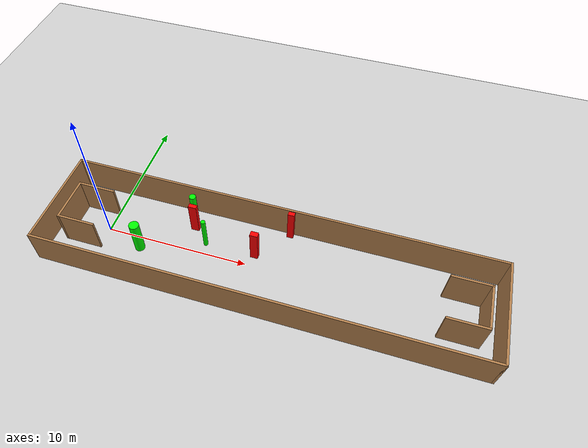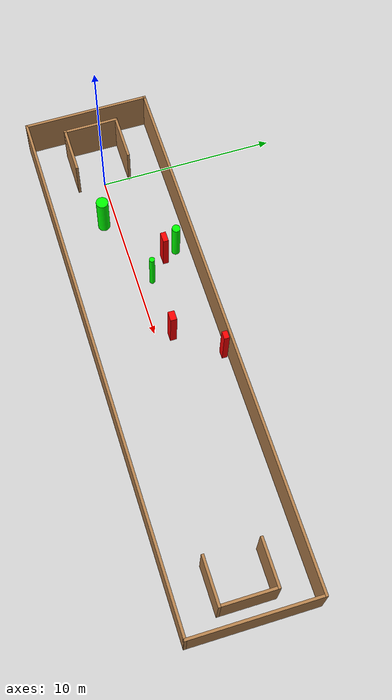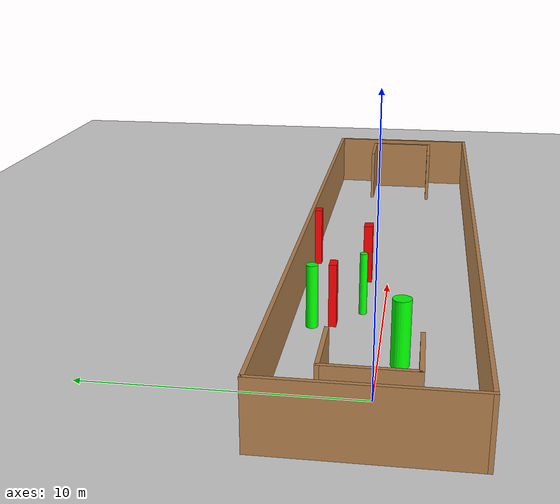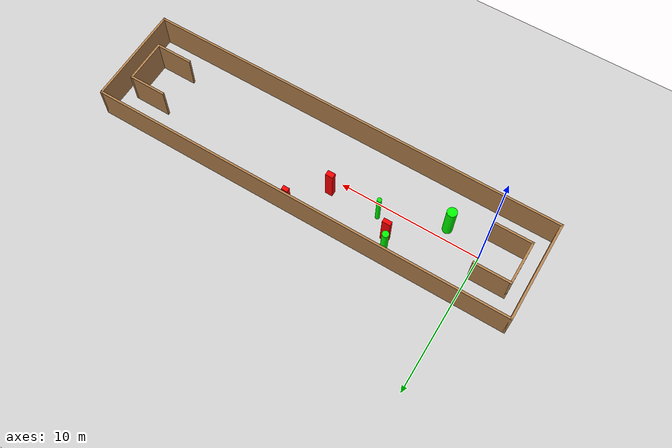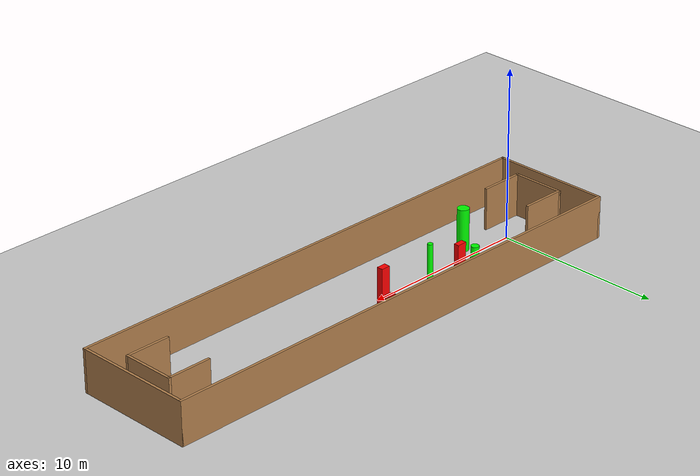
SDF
<sdf version="1.7">
 <world name="default">
  <light name="sun" type="directional">
   <pose>0 0 10 0 -0 0</pose>
   <diffuse>0.8 0.8 0.8 1</diffuse>
   <specular>0.2 0.2 0.2 1</specular>
   <attenuation>
    <range>1000</range>
    <constant>0.9</constant>
    <linear>0.01</linear>
    <quadratic>0.001</quadratic>
   </attenuation>
   <direction>-0.5 0.1 -0.9</direction>
   <spot><inner_angle>0</inner_angle><outer_angle>0</outer_angle><falloff>0</falloff></spot>
  </light>
  <model name="ground_plane">
   <static>1</static>
   <link name="link">
    <collision name="collision">
     <geometry><plane><normal>0 0 1</normal><size>100 100</size></plane></geometry>
     <surface>
      <contact><collide_bitmask>65535</collide_bitmask></contact>
      <friction><ode><mu>100</mu><mu2>50</mu2></ode></friction>
     </surface>
    </collision>
    <visual name="visual">
     <cast_shadows>0</cast_shadows>
     <geometry><plane><normal>0 0 1</normal><size>100 100</size></plane></geometry>
     <material>
      <script><uri>file://media/materials/scripts/gazebo.material</uri><name>Gazebo/Grey</name></script>
     </material>
    </visual>
   </link>
  </model>
  <gravity>0 0 -9.8</gravity>
  <magnetic_field>6e-06 2.3e-05 -4.2e-05</magnetic_field>
  <atmosphere type="adiabatic"/>
  <physics type="ode">
   <max_step_size>0.001</max_step_size>
   <real_time_factor>1</real_time_factor>
   <real_time_update_rate>1000</real_time_update_rate>
  </physics>
  <scene><ambient>0.4 0.4 0.4 1</ambient><background>0.7 0.7 0.7 1</background><shadows>1</shadows></scene>
  <spherical_coordinates>
   <surface_model>EARTH_WGS84</surface_model>
   <latitude_deg>0</latitude_deg>
   <longitude_deg>0</longitude_deg>
   <elevation>0</elevation>
   <heading_deg>0</heading_deg>
  </spherical_coordinates>
  <model name="my_base_walls">
   <link name="Wall_0">
    <collision name="Wall_0_Collision">
     <geometry><box><size>7.15 0.15 2.5</size></box></geometry>
     <pose>0 0 1.25 0 -0 0</pose>
    </collision>
    <visual name="Wall_0_Visual">
     <pose>0 0 1.25 0 -0 0</pose>
     <geometry><box><size>7.15 0.15 2.5</size></box></geometry>
     <material>
      <script><uri>file://media/materials/scripts/gazebo.material</uri><name>Gazebo/Wood</name></script>
      <ambient>1 1 1 1</ambient>
     </material>
     <meta><layer>0</layer></meta>
    </visual>
    <pose>-15 0 0 0 -0 1.5708</pose>
   </link>
   <link name="Wall_10">
    <collision name="Wall_10_Collision">
     <geometry><box><size>2.65 0.15 2.5</size></box></geometry>
     <pose>0 0 1.25 0 -0 0</pose>
    </collision>
    <visual name="Wall_10_Visual">
     <pose>0 0 1.25 0 -0 0</pose>
     <geometry><box><size>2.65 0.15 2.5</size></box></geometry>
     <material>
      <script><uri>file://media/materials/scripts/gazebo.material</uri><name>Gazebo/Wood</name></script>
      <ambient>1 1 1 1</ambient>
     </material>
     <meta><layer>0</layer></meta>
    </visual>
    <pose>-12.75 -1.5 0 0 -0 0</pose>
   </link>
   <link name="Wall_12">
    <collision name="Wall_12_Collision">
     <geometry><box><size>2.65 0.15 2.5</size></box></geometry>
     <pose>0 0 1.25 0 -0 0</pose>
    </collision>
    <visual name="Wall_12_Visual">
     <pose>0 0 1.25 0 -0 0</pose>
     <geometry><box><size>2.65 0.15 2.5</size></box></geometry>
     <material>
      <script><uri>file://media/materials/scripts/gazebo.material</uri><name>Gazebo/Wood</name></script>
      <ambient>1 1 1 1</ambient>
     </material>
     <meta><layer>0</layer></meta>
    </visual>
    <pose>-12.75 1.5 0 0 -0 0</pose>
   </link>
   <link name="Wall_14">
    <collision name="Wall_14_Collision">
     <geometry><box><size>3.15 0.15 2.5</size></box></geometry>
     <pose>0 0 1.25 0 -0 0</pose>
    </collision>
    <visual name="Wall_14_Visual">
     <pose>0 0 1.25 0 -0 0</pose>
     <geometry><box><size>3.15 0.15 2.5</size></box></geometry>
     <material>
      <script><uri>file://media/materials/scripts/gazebo.material</uri><name>Gazebo/Wood</name></script>
      <ambient>1 1 1 1</ambient>
     </material>
     <meta><layer>0</layer></meta>
    </visual>
    <pose>14 0 0 0 -0 -1.5708</pose>
   </link>
   <link name="Wall_15">
    <collision name="Wall_15_Collision">
     <geometry><box><size>2.65 0.15 2.5</size></box></geometry>
     <pose>0 0 1.25 0 -0 0</pose>
    </collision>
    <visual name="Wall_15_Visual">
     <pose>0 0 1.25 0 -0 0</pose>
     <geometry><box><size>2.65 0.15 2.5</size></box></geometry>
     <material>
      <script><uri>file://media/materials/scripts/gazebo.material</uri><name>Gazebo/Wood</name></script>
      <ambient>1 1 1 1</ambient>
     </material>
     <meta><layer>0</layer></meta>
    </visual>
    <pose>12.75 -1.5 0 0 -0 3.14159</pose>
   </link>
   <link name="Wall_17">
    <collision name="Wall_17_Collision">
     <geometry><box><size>2.65 0.15 2.5</size></box></geometry>
     <pose>0 0 1.25 0 -0 0</pose>
    </collision>
    <visual name="Wall_17_Visual">
     <pose>0 0 1.25 0 -0 0</pose>
     <geometry><box><size>2.65 0.15 2.5</size></box></geometry>
     <material>
      <script><uri>file://media/materials/scripts/gazebo.material</uri><name>Gazebo/Wood</name></script>
      <ambient>1 1 1 1</ambient>
     </material>
     <meta><layer>0</layer></meta>
    </visual>
    <pose>12.75 1.5 0 0 -0 3.14159</pose>
   </link>
   <link name="Wall_2">
    <collision name="Wall_2_Collision">
     <geometry><box><size>30.15 0.15 2.5</size></box></geometry>
     <pose>0 0 1.25 0 -0 0</pose>
    </collision>
    <visual name="Wall_2_Visual">
     <pose>0 0 1.25 0 -0 0</pose>
     <geometry><box><size>30.15 0.15 2.5</size></box></geometry>
     <material>
      <script><uri>file://media/materials/scripts/gazebo.material</uri><name>Gazebo/Wood</name></script>
      <ambient>1 1 1 1</ambient>
     </material>
     <meta><layer>0</layer></meta>
    </visual>
    <pose>-0 -3.5 0 0 -0 0</pose>
   </link>
   <link name="Wall_4">
    <collision name="Wall_4_Collision">
     <geometry><box><size>30.15 0.15 2.5</size></box></geometry>
     <pose>0 0 1.25 0 -0 0</pose>
    </collision>
    <visual name="Wall_4_Visual">
     <pose>0 0 1.25 0 -0 0</pose>
     <geometry><box><size>30.15 0.15 2.5</size></box></geometry>
     <material>
      <script><uri>file://media/materials/scripts/gazebo.material</uri><name>Gazebo/Wood</name></script>
      <ambient>1 1 1 1</ambient>
     </material>
     <meta><layer>0</layer></meta>
    </visual>
    <pose>-0 3.5 0 0 -0 0</pose>
   </link>
   <link name="Wall_6">
    <collision name="Wall_6_Collision">
     <geometry><box><size>7.15 0.15 2.5</size></box></geometry>
     <pose>0 0 1.25 0 -0 0</pose>
    </collision>
    <visual name="Wall_6_Visual">
     <pose>0 0 1.25 0 -0 0</pose>
     <geometry><box><size>7.15 0.15 2.5</size></box></geometry>
     <material>
      <script><uri>file://media/materials/scripts/gazebo.material</uri><name>Gazebo/Wood</name></script>
      <ambient>1 1 1 1</ambient>
     </material>
     <meta><layer>0</layer></meta>
    </visual>
    <pose>15 0 0 0 -0 -1.5708</pose>
   </link>
   <link name="Wall_9">
    <collision name="Wall_9_Collision">
     <geometry><box><size>3.15 0.15 2.5</size></box></geometry>
     <pose>0 0 1.25 0 -0 0</pose>
    </collision>
    <visual name="Wall_9_Visual">
     <pose>0 0 1.25 0 -0 0</pose>
     <geometry><box><size>3.15 0.15 2.5</size></box></geometry>
     <material>
      <script><uri>file://media/materials/scripts/gazebo.material</uri><name>Gazebo/Wood</name></script>
      <ambient>1 1 1 1</ambient>
     </material>
     <meta><layer>0</layer></meta>
    </visual>
    <pose>-14 0 0 0 -0 -1.5708</pose>
   </link>
   <static>1</static>
   <pose>11.5 0 0 0 -0 0</pose>
  </model>
  <model name="cylinder1">
   <static>1</static>
   <link name="link">
    <inertial>
     <mass>1</mass>
     <inertia><ixx>0.5</ixx><ixy>0</ixy><ixz>0</ixz><iyy>0.5</iyy><iyz>0</iyz><izz>1</izz></inertia>
    </inertial>
    <collision name="collision">
     <geometry><cylinder><radius>0.33954353417196526</radius><length>2.5</length></cylinder></geometry>
    </collision>
    <visual name="visual">
     <geometry><cylinder><radius>0.33954353417196526</radius><length>2.5</length></cylinder></geometry>
     <material>
      <ambient>0 1 0 1</ambient>
      <diffuse>0 1 0 1</diffuse>
      <specular>0.1 0.1 0.1 1</specular>
      <emissive>0 0 0 0</emissive>
     </material>
    </visual>
   </link>
   <pose>2.6477601715738484 -0.7738969554507218 1.25 0 0 0</pose>
  </model>
  <model name="cylinder2">
   <static>1</static>
   <link name="link">
    <inertial>
     <mass>1</mass>
     <inertia><ixx>0.5</ixx><ixy>0</ixy><ixz>0</ixz><iyy>0.5</iyy><iyz>0</iyz><izz>1</izz></inertia>
    </inertial>
    <collision name="collision">
     <geometry><cylinder><radius>0.2312841802814616</radius><length>2.5</length></cylinder></geometry>
    </collision>
    <visual name="visual">
     <geometry><cylinder><radius>0.2312841802814616</radius><length>2.5</length></cylinder></geometry>
     <material>
      <ambient>0 1 0 1</ambient>
      <diffuse>0 1 0 1</diffuse>
      <specular>0.1 0.1 0.1 1</specular>
      <emissive>0 0 0 0</emissive>
     </material>
    </visual>
   </link>
   <pose>5.4226835418459824 2.6483397866682328 1.25 0 0 0</pose>
  </model>
  <model name="cylinder3">
   <static>1</static>
   <link name="link">
    <inertial>
     <mass>1</mass>
     <inertia><ixx>0.5</ixx><ixy>0</ixy><ixz>0</ixz><iyy>0.5</iyy><iyz>0</iyz><izz>1</izz></inertia>
    </inertial>
    <collision name="collision">
     <geometry><cylinder><radius>0.15247700219127325</radius><length>2.5</length></cylinder></geometry>
    </collision>
    <visual name="visual">
     <geometry><cylinder><radius>0.15247700219127325</radius><length>2.5</length></cylinder></geometry>
     <material>
      <ambient>0 1 0 1</ambient>
      <diffuse>0 1 0 1</diffuse>
      <specular>0.1 0.1 0.1 1</specular>
      <emissive>0 0 0 0</emissive>
     </material>
    </visual>
   </link>
   <pose>6.8901226579364465 0.8303632224688569 1.25 0 0 0</pose>
  </model>
  <model name="box1">
   <static>1</static>
   <link name="link">
    <inertial>
     <mass>1</mass>
     <inertia><ixx>0.083</ixx><ixy>0</ixy><ixz>0</ixz><iyy>0.083</iyy><iyz>0</iyz><izz>0.083</izz></inertia>
    </inertial>
    <collision name="collision">
     <geometry><box><size>0.5749139109179908 0.29954163024843056 2.5</size></box></geometry>
    </collision>
    <visual name="visual">
     <geometry><box><size>0.5749139109179908 0.29954163024843056 2.5</size></box></geometry>
     <material>
      <ambient>1 0 0 1</ambient>
      <diffuse>1 0 0 1</diffuse>
      <specular>0.1 0.1 0.1 1</specular>
      <emissive>0 0 0 0</emissive>
     </material>
    </visual>
    <sensor name="my_contact" type="contact">
     <contact><collision>box_collision</collision><topic>__default_topic__</topic></contact>
    </sensor>
   </link>
   <pose>5.740815456856735 1.8830121453102677 1.25 0 0 0</pose>
  </model>
  <model name="box2">
   <static>1</static>
   <link name="link">
    <inertial>
     <mass>1</mass>
     <inertia><ixx>0.083</ixx><ixy>0</ixy><ixz>0</ixz><iyy>0.083</iyy><iyz>0</iyz><izz>0.083</izz></inertia>
    </inertial>
    <collision name="collision">
     <geometry><box><size>0.44378292765781113 0.30149826359158294 2.5</size></box></geometry>
    </collision>
    <visual name="visual">
     <geometry><box><size>0.44378292765781113 0.30149826359158294 2.5</size></box></geometry>
     <material>
      <ambient>1 0 0 1</ambient>
      <diffuse>1 0 0 1</diffuse>
      <specular>0.1 0.1 0.1 1</specular>
      <emissive>0 0 0 0</emissive>
     </material>
    </visual>
    <sensor name="my_contact" type="contact">
     <contact><collision>box_collision</collision><topic>__default_topic__</topic></contact>
    </sensor>
   </link>
   <pose>12.292793118502694 3.218207622921894 1.25 0 0 0</pose>
  </model>
  <model name="box3">
   <static>1</static>
   <link name="link">
    <inertial>
     <mass>1</mass>
     <inertia><ixx>0.083</ixx><ixy>0</ixy><ixz>0</ixz><iyy>0.083</iyy><iyz>0</iyz><izz>0.083</izz></inertia>
    </inertial>
    <collision name="collision">
     <geometry><box><size>0.5321039045679361 0.36442844788583373 2.5</size></box></geometry>
    </collision>
    <visual name="visual">
     <geometry><box><size>0.5321039045679361 0.36442844788583373 2.5</size></box></geometry>
     <material>
      <ambient>1 0 0 1</ambient>
      <diffuse>1 0 0 1</diffuse>
      <specular>0.1 0.1 0.1 1</specular>
      <emissive>0 0 0 0</emissive>
     </material>
    </visual>
    <sensor name="my_contact" type="contact">
     <contact><collision>box_collision</collision><topic>__default_topic__</topic></contact>
    </sensor>
   </link>
   <pose>10.422068721403136 0.8821750662747139 1.25 0 0 0</pose>
  </model>
 </world>
</sdf>
